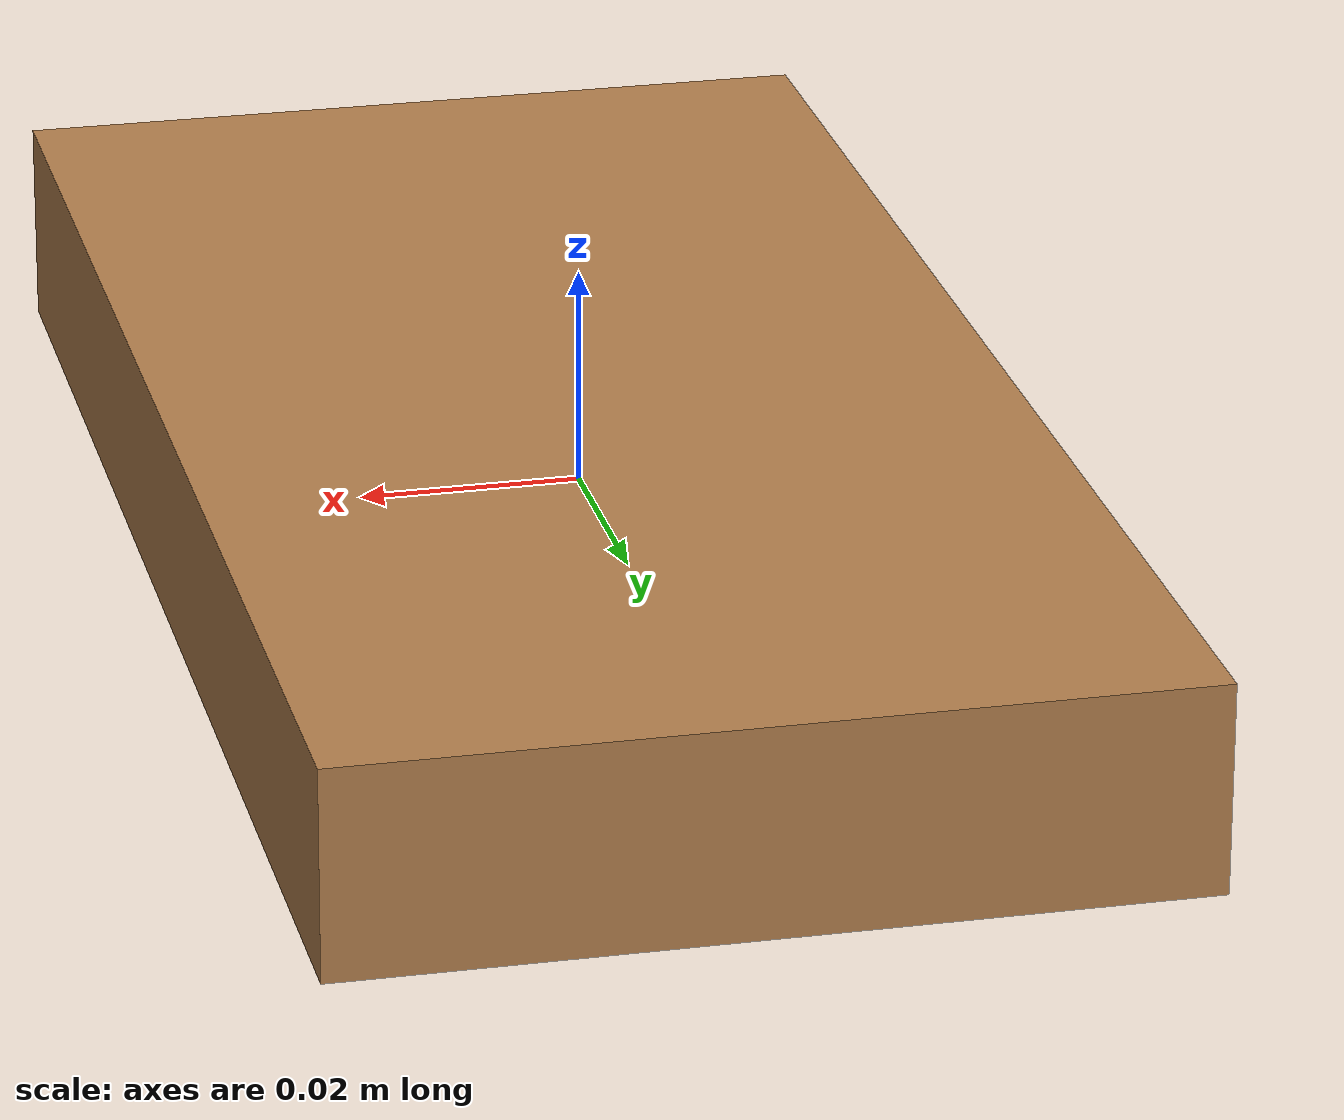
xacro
<?xml version="1.0"?>
<robot name="block_1" xmlns:xacro="http://www.ros.org/wiki/xacro">
  <link name="link_1">
    <inertial>
      <origin xyz="0.0 0.0 0.0"/>
      <mass value="0.05"/>
      <inertia ixx="0.001" ixy="0.0" ixz="0.0" iyy="0.001" iyz="0.0" izz="0.001"/>
    </inertial>
    <visual>
      <origin xyz="0.0 0.0 0.0"/>
      <geometry>
        <box size="0.0762 0.1524 0.01905"/>
      </geometry>
    </visual>
    <collision>
      <origin xyz="0.0 0.0 0.0"/>
      <geometry>
        <box size="0.0762 0.1524 0.01905"/>
      </geometry>
    </collision>
  </link>
  <gazebo reference="link_1">
    <mu1>1.0</mu1>
    <mu2>1.0</mu2>
    <material>Gazebo/Wood</material>
    <sensor name="block_contact" type="contact">
      <always_on>true</always_on>
      <update_rate>30</update_rate>
      <contact>
        <collision>link_1_collision</collision>
      </contact>
      <plugin name="block_contact_plugin" filename="libgazebo_ros_bumper.so">
        <bumperTopicName>block_contact_state</bumperTopicName>
        <frameName>link_1</frameName>
      </plugin>
    </sensor>
  </gazebo>
</robot>
